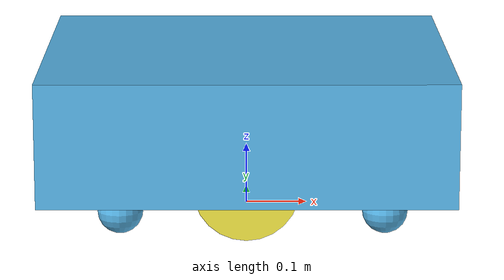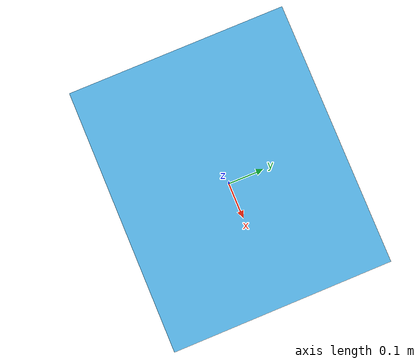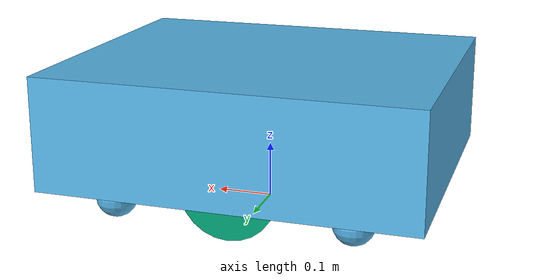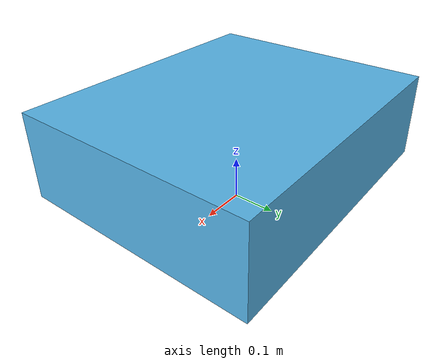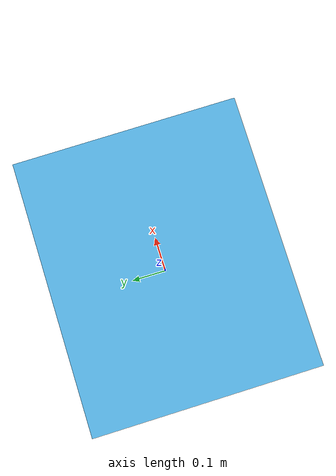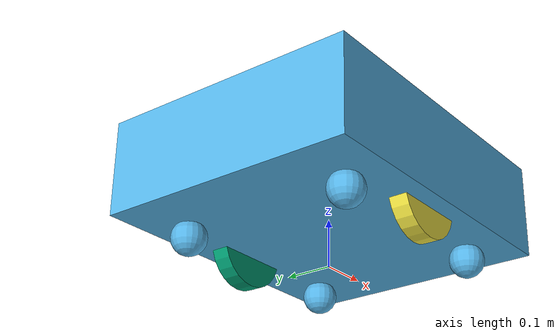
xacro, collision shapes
<?xml version="1.0"?>
<robot name="W1" xmlns:xacro="http://www.ros.org/wiki/xacro">

	<xacro:property name="PI" value="3.1415926535897931"/>
	<xacro:arg name="type" default="base"/>
	<xacro:arg name="collider" default="convex"/>
	<xacro:arg name="chassis" default="w1"/>
	<xacro:arg name="chassis_joints_movable" default="true"/>
	<xacro:arg name="arms" default="ar5_srs"/>
	<xacro:arg name="isaac" default="true"/>

	<xacro:if value="${'$(arg type)' == 'base' and '$(arg chassis)' == 'w1'}">
		<xacro:include filename="$(find fiveages_w1_description)/xacro/chassis/chassis.xacro"/>
		<xacro:Chassis joints_movable="$(arg chassis_joints_movable)" isaac="$(arg isaac)"/>
	</xacro:if>
	<xacro:if value="${'$(arg type)' == 'base' and '$(arg chassis)' == 'linkhou_q1'}">
		<xacro:include filename="$(find fiveages_w1_description)/xacro/chassis/linkhou_q1.xacro"/>
		<xacro:Chassis joints_movable="$(arg chassis_joints_movable)"  isaac="$(arg isaac)"/>
	</xacro:if>
	<xacro:if value="${'$(arg type)' == 'linkhou_q1'}">
		<xacro:include filename="$(find fiveages_w1_description)/xacro/chassis/linkhou_q1.xacro"/>
		<xacro:Chassis joints_movable="$(arg chassis_joints_movable)"/>
	</xacro:if>

	<xacro:if value="${'$(arg type)' == 'upper_body'}">
		<xacro:include filename="$(find fiveages_w1_description)/xacro/body.xacro"/>
		<link name="base_link"/>
		<xacro:Body collider="$(arg collider)"/>
	</xacro:if>

	<xacro:if value="${'$(arg type)' == 'arms'}">
		<link name="arm_base"/>

		<joint name="left_arm_mount" type="fixed">
			<parent link="arm_base"/>
			<child link="left_base_link"/>
			<origin xyz="0.0 0.12 0" rpy="-${PI/2} ${PI/2} 0"/>
		</joint>
		<joint name="right_arm_mount" type="fixed">
			<parent link="arm_base"/>
			<child link="right_base_link"/>
			<origin xyz="0.0 -0.12 0" rpy="${PI/2} ${PI/2} 0"/>
		</joint>

		<xacro:if value="${'$(arg arms)' == 'ar5_ccs'}">
			<xacro:include filename="$(find ar5_ccs_description)/xacro/arm_ccs.xacro"/>
			<xacro:AR5_CCS name="left" direction="1" collider="$(arg collider)"/>
			<xacro:AR5_CCS name="right" direction="-1" collider="$(arg collider)"/>
		</xacro:if>
		<xacro:if value="${'$(arg arms)' == 'ar5_srs'}">
			<xacro:include filename="$(find ar5_srs_description)/xacro/arm_srs.xacro"/>
			<xacro:Arm name="left" direction="1" collider="$(arg collider)"/>
			<xacro:Arm name="right" direction="-1" collider="$(arg collider)"/>
		</xacro:if>
	</xacro:if>

</robot>

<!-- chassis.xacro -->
<robot xmlns:xacro="http://www.ros.org/wiki/xacro">

    <!-- Wheel height properties -->
    <xacro:property name="drive_wheel_height" value="-0.177505"/>
    <xacro:property name="support_wheel_height" value="-0.2252"/>

    <xacro:macro name="Chassis" params="joints_movable:=true isaac:=false">
        <xacro:if value="${joints_movable}">
            <xacro:property name="wheel_joint_type" value="continuous"/>
        </xacro:if>
        <xacro:unless value="${joints_movable}">
            <xacro:property name="wheel_joint_type" value="fixed"/>
        </xacro:unless>

        <!-- Base Link -->
        <link name="base_footprint"/>

        <!-- Chassis Base Joint -->
        <joint name="base_footprint_joint" type="fixed">
            <parent link="base_footprint"/>
            <child link="base_link"/>
            <origin xyz="0.04 0 0.265"/>
        </joint>

        <!-- Chassis Base Link -->
        <link name="base_link">
            <inertial>
                <origin xyz="-0.027237 -0.00044706 -0.13065"/>
                <mass value="18.789"/>
                <inertia
                        ixx="0.32103"
                        ixy="-0.00088596"
                        ixz="0.0070426"
                        iyy="0.35279"
                        iyz="0.00010881"
                        izz="0.63543"/>
            </inertial>
            <visual>
                <geometry>
                    <mesh filename="file://$(find fiveages_w1_description)/meshes/chassis/base.glb"/>
                </geometry>
            </visual>
            <collision>
                <origin xyz="0.1806 0.1873 ${support_wheel_height}"/>
                <geometry>
                    <sphere radius="0.0365"/>
                </geometry>
            </collision>
            <collision>
                <origin xyz="0.1806 -0.1873 ${support_wheel_height}"/>
                <geometry>
                    <sphere radius="0.0365"/>
                </geometry>
            </collision>
            <collision>
                <origin xyz="-0.2423 0.1873 ${support_wheel_height}"/>
                <geometry>
                    <sphere radius="0.0365"/>
                </geometry>
            </collision>
            <collision>
                <origin xyz="-0.2423 -0.1873 ${support_wheel_height}"/>
                <geometry>
                    <sphere radius="0.0365"/>
                </geometry>
            </collision>

            <collision>
                <origin xyz="-0.04 0 -0.1"/>
                <geometry>
                    <box size=".66 .55 .2"/>
                </geometry>
            </collision>
        </link>

        <!-- Left Wheel Link -->
        <link name="chassis_left_Link">
            <inertial>
                <origin xyz="4.996E-16 0.033322 0"/>
                <mass value="2.8637"/>
                <inertia
                        ixx="0.0051541"
                        ixy="-3.3608E-17"
                        ixz="-1.1703E-17"
                        iyy="0.0090798"
                        iyz="-5.0051E-18"
                        izz="0.0051541"/>
            </inertial>
            <visual>
                <geometry>
                    <mesh filename="file://$(find fiveages_w1_description)/meshes/chassis/wheel.glb"/>
                </geometry>
            </visual>
            <collision>
                <origin rpy="1.5708 0 0" xyz="0 0.0321 0"/>
                <geometry>
                    <cylinder radius="0.0842" length="0.038"/>
                </geometry>
            </collision>
        </link>

        <!-- Left Wheel Joint -->
        <joint name="chassis_left_joint" type="${wheel_joint_type}">
            <origin xyz="-0.041 0.1846 ${drive_wheel_height}"/>
            <parent link="base_link"/>
            <child link="chassis_left_Link"/>
            <xacro:if value="${joints_movable}">
                <axis xyz="0 1 0"/>
            </xacro:if>
        </joint>

        <!-- Right Wheel Link -->
        <link name="chassis_right_Link">
            <inertial>
                <origin xyz="-5.2736E-16 -0.033322 1.1102E-16"/>
                <mass value="2.8637"/>
                <inertia
                        ixx="0.0051541"
                        ixy="-3.3734E-17"
                        ixz="1.0772E-17"
                        iyy="0.0090798"
                        iyz="5.0454E-18"
                        izz="0.0051541"/>
            </inertial>
            <visual>
                <geometry>
                    <mesh filename="file://$(find fiveages_w1_description)/meshes/chassis/wheel.glb" scale="1 -1 1"/>
                </geometry>
            </visual>
            <collision>
                <origin rpy="1.5708 0 0" xyz="0 -0.0321 0"/>
                <geometry>
                    <cylinder radius="0.0842" length="0.038"/>
                </geometry>
            </collision>
        </link>

        <!-- Right Wheel Joint -->
        <joint name="chassis_right_joint" type="${wheel_joint_type}">
            <origin xyz="-0.041 -0.1846 ${drive_wheel_height}"/>
            <parent link="base_link"/>
            <child link="chassis_right_Link"/>
            <xacro:if value="${joints_movable}">
                <axis xyz="0 1 0"/>
            </xacro:if>
        </joint>

        <link name="scan"/>
        <joint name="scan_link" type="fixed">
            <parent link="base_footprint"/>
            <child link="scan"/>
            <origin xyz="0.28 0 0.2"/>
        </joint>

        <link name="chassis_camera"/>
        <joint name="chassis_camera_joint" type="fixed">
            <parent link="base_footprint"/>
            <child link="chassis_camera"/>
            <origin xyz="0.32 0 0.2285"/>
        </joint>

        <link name="imu"/>
        <joint name="imu_link" type="fixed">
            <parent link="base_footprint"/>
            <child link="imu"/>
            <origin xyz="0 0 0.11"/>
        </joint>

        <link name="lidar_link">
            <xacro:unless value="${isaac}">
                <visual>
                    <geometry>
                        <mesh filename="file://$(find sensor_models)/meshes/orbbec/ms500.glb"/>
                    </geometry>
                </visual>
            </xacro:unless>
        </link>
        <joint name="lidar_joint" type="fixed">
            <origin xyz="0.24146 0  -0.14599"/>
            <parent link="base_link"/>
            <child link="lidar_link"/>
        </joint>

    </xacro:macro>
</robot>
